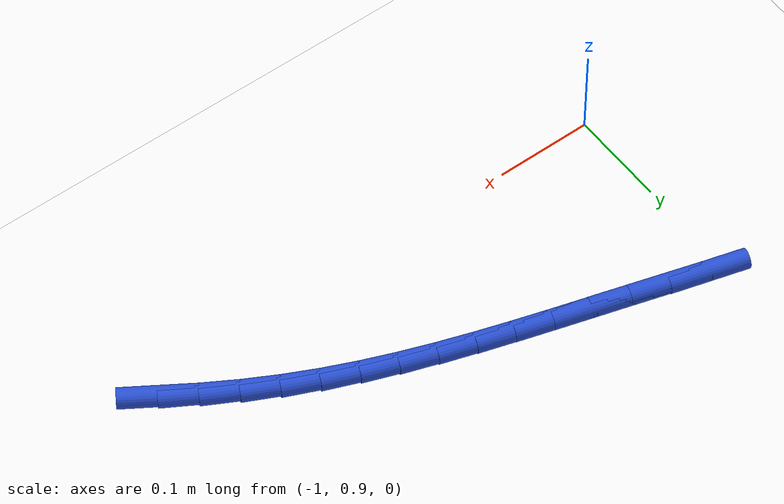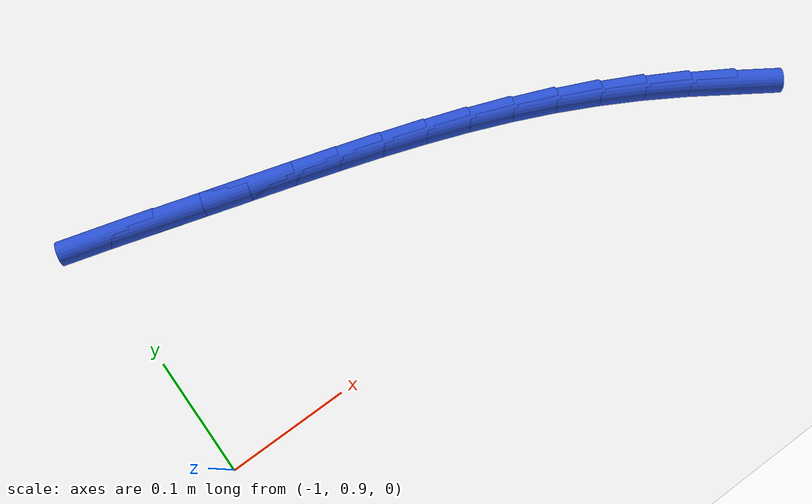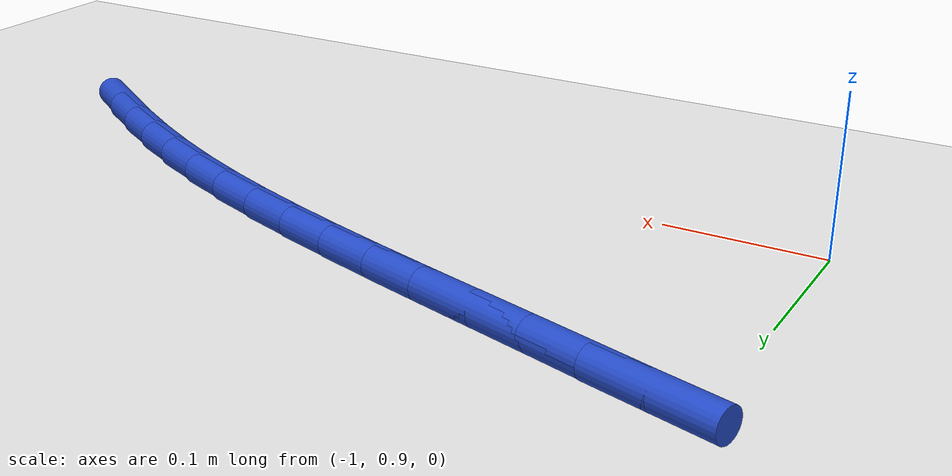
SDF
<sdf version="1.6">
 <world name="default">
  <model name="ground_plane">
   <static>1</static>
   <link name="link">
    <collision name="collision">
     <geometry><plane><normal>0 0 1</normal><size>100 100</size></plane></geometry>
     <surface><friction><ode><mu>100</mu><mu2>50</mu2></ode></friction></surface>
    </collision>
    <visual name="visual">
     <cast_shadows>0</cast_shadows>
     <geometry><plane><normal>0 0 1</normal><size>100 100</size></plane></geometry>
     <material>
      <script><uri>file://media/materials/scripts/gazebo.material</uri><name>Gazebo/WhiteGlow</name></script>
     </material>
    </visual>
   </link>
  </model>
  <model name="line">
   <link name="link_29">
    <pose>-0.49692912092693453 0.9172540680462133 0.01 0 1.57 -0.5790679919848344</pose>
    <collision name="collision">
     <geometry><cylinder><radius>0.01</radius><length>0.08</length></cylinder></geometry>
    </collision>
    <visual name="visual">
     <material>
      <script><name>Gazebo/Blue</name><uri>file://media/materials/scripts/gazebo.material</uri></script>
     </material>
     <geometry><cylinder><radius>0.01</radius><length>0.08</length></cylinder></geometry>
    </visual>
   </link>
   <link name="link_30">
    <pose>-0.5280074870132879 0.937574259685733 0.01 0 1.57 -0.5403919457006781</pose>
    <collision name="collision">
     <geometry><cylinder><radius>0.01</radius><length>0.08</length></cylinder></geometry>
    </collision>
    <visual name="visual">
     <material>
      <script><name>Gazebo/Blue</name><uri>file://media/materials/scripts/gazebo.material</uri></script>
     </material>
     <geometry><cylinder><radius>0.01</radius><length>0.08</length></cylinder></geometry>
    </visual>
   </link>
   <link name="link_31">
    <pose>-0.5597088705494562 0.9565939018426093 0.01 0 1.57 -0.5001200737778002</pose>
    <collision name="collision">
     <geometry><cylinder><radius>0.01</radius><length>0.08</length></cylinder></geometry>
    </collision>
    <visual name="visual">
     <material>
      <script><name>Gazebo/Blue</name><uri>file://media/materials/scripts/gazebo.material</uri></script>
     </material>
     <geometry><cylinder><radius>0.01</radius><length>0.08</length></cylinder></geometry>
    </visual>
   </link>
   <link name="link_32">
    <pose>-0.5919929008764467 0.9742357817053481 0.01 0 1.57 -0.4581635751073741</pose>
    <collision name="collision">
     <geometry><cylinder><radius>0.01</radius><length>0.08</length></cylinder></geometry>
    </collision>
    <visual name="visual">
     <material>
      <script><name>Gazebo/Blue</name><uri>file://media/materials/scripts/gazebo.material</uri></script>
     </material>
     <geometry><cylinder><radius>0.01</radius><length>0.08</length></cylinder></geometry>
    </visual>
   </link>
   <link name="link_33">
    <pose>-0.6248193930607605 0.990424613899813 0.01 0 1.57 -0.4170047854627513</pose>
    <collision name="collision">
     <geometry><cylinder><radius>0.01</radius><length>0.08</length></cylinder></geometry>
    </collision>
    <visual name="visual">
     <material>
      <script><name>Gazebo/Blue</name><uri>file://media/materials/scripts/gazebo.material</uri></script>
     </material>
     <geometry><cylinder><radius>0.01</radius><length>0.08</length></cylinder></geometry>
    </visual>
   </link>
   <link name="link_34">
    <pose>-0.6581585939559912 1.0051933729125293 0.01 0 1.57 -0.38076561511235363</pose>
    <collision name="collision">
     <geometry><cylinder><radius>0.01</radius><length>0.08</length></cylinder></geometry>
    </collision>
    <visual name="visual">
     <material>
      <script><name>Gazebo/Blue</name><uri>file://media/materials/scripts/gazebo.material</uri></script>
     </material>
     <geometry><cylinder><radius>0.01</radius><length>0.08</length></cylinder></geometry>
    </visual>
   </link>
   <link name="link_35">
    <pose>-0.6919965231943169 1.0187387212727943 0.01 0 1.57 -0.3500765276781353</pose>
    <collision name="collision">
     <geometry><cylinder><radius>0.01</radius><length>0.08</length></cylinder></geometry>
    </collision>
    <visual name="visual">
     <material>
      <script><name>Gazebo/Blue</name><uri>file://media/materials/scripts/gazebo.material</uri></script>
     </material>
     <geometry><cylinder><radius>0.01</radius><length>0.08</length></cylinder></geometry>
    </visual>
   </link>
   <link name="link_36">
    <pose>-0.7263205119005703 1.0312709320265703 0.01 0 1.57 -0.32511477084612067</pose>
    <collision name="collision">
     <geometry><cylinder><radius>0.01</radius><length>0.08</length></cylinder></geometry>
    </collision>
    <visual name="visual">
     <material>
      <script><name>Gazebo/Blue</name><uri>file://media/materials/scripts/gazebo.material</uri></script>
     </material>
     <geometry><cylinder><radius>0.01</radius><length>0.08</length></cylinder></geometry>
    </visual>
   </link>
   <link name="link_37">
    <pose>-0.7611178911995843 1.0430002782198204 0.01 0 1.57 -0.3059463766919465</pose>
    <collision name="collision">
     <geometry><cylinder><radius>0.01</radius><length>0.08</length></cylinder></geometry>
    </collision>
    <visual name="visual">
     <material>
      <script><name>Gazebo/Blue</name><uri>file://media/materials/scripts/gazebo.material</uri></script>
     </material>
     <geometry><cylinder><radius>0.01</radius><length>0.08</length></cylinder></geometry>
    </visual>
   </link>
   <link name="link_38">
    <pose>-0.7963759922161912 1.0541370328985071 0.01 0 1.57 -0.2925507404638758</pose>
    <collision name="collision">
     <geometry><cylinder><radius>0.01</radius><length>0.08</length></cylinder></geometry>
    </collision>
    <visual name="visual">
     <material>
      <script><name>Gazebo/Blue</name><uri>file://media/materials/scripts/gazebo.material</uri></script>
     </material>
     <geometry><cylinder><radius>0.01</radius><length>0.08</length></cylinder></geometry>
    </visual>
   </link>
   <link name="link_39">
    <pose>-0.8320821460752243 1.0648914691085936 0.01 0 1.57 -0.284842055436603</pose>
    <collision name="collision">
     <geometry><cylinder><radius>0.01</radius><length>0.08</length></cylinder></geometry>
    </collision>
    <visual name="visual">
     <material>
      <script><name>Gazebo/Blue</name><uri>file://media/materials/scripts/gazebo.material</uri></script>
     </material>
     <geometry><cylinder><radius>0.01</radius><length>0.08</length></cylinder></geometry>
    </visual>
   </link>
   <link name="link_40">
    <pose>-0.8682236839015163 1.0754738598960423 0.01 0 1.57 -0.28268585916986205</pose>
    <collision name="collision">
     <geometry><cylinder><radius>0.01</radius><length>0.08</length></cylinder></geometry>
    </collision>
    <visual name="visual">
     <material>
      <script><name>Gazebo/Blue</name><uri>file://media/materials/scripts/gazebo.material</uri></script>
     </material>
     <geometry><cylinder><radius>0.01</radius><length>0.08</length></cylinder></geometry>
    </visual>
   </link>
   <link name="link_41">
    <pose>-0.9047879368198998 1.0860944783068163 0.01 0 1.57 -0.28570169210642626</pose>
    <collision name="collision">
     <geometry><cylinder><radius>0.01</radius><length>0.08</length></cylinder></geometry>
    </collision>
    <visual name="visual">
     <material>
      <script><name>Gazebo/Blue</name><uri>file://media/materials/scripts/gazebo.material</uri></script>
     </material>
     <geometry><cylinder><radius>0.01</radius><length>0.08</length></cylinder></geometry>
    </visual>
   </link>
   <link name="link_42">
    <pose>-0.9417604463109354 1.0969546975188447 0.01 0 1.57 -0.28590806677265207</pose>
    <collision name="collision">
     <geometry><cylinder><radius>0.01</radius><length>0.08</length></cylinder></geometry>
    </collision>
    <visual name="visual">
     <material>
      <script><name>Gazebo/Blue</name><uri>file://media/materials/scripts/gazebo.material</uri></script>
     </material>
     <geometry><cylinder><radius>0.01</radius><length>0.08</length></cylinder></geometry>
    </visual>
   </link>
   <link name="link_43">
    <pose>-0.9790590210083654 1.1079190565092116 0.01 0 1.57 -0.27333436072070205</pose>
    <collision name="collision">
     <geometry><cylinder><radius>0.01</radius><length>0.08</length></cylinder></geometry>
    </collision>
    <visual name="visual">
     <material>
      <script><name>Gazebo/Blue</name><uri>file://media/materials/scripts/gazebo.material</uri></script>
     </material>
     <geometry><cylinder><radius>0.01</radius><length>0.08</length></cylinder></geometry>
    </visual>
   </link>
  </model>
 </world>
</sdf>
